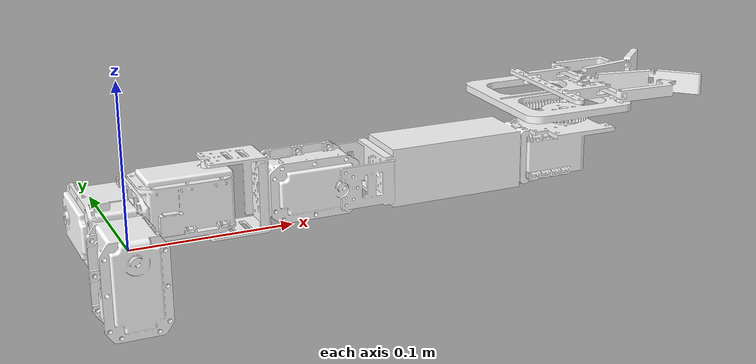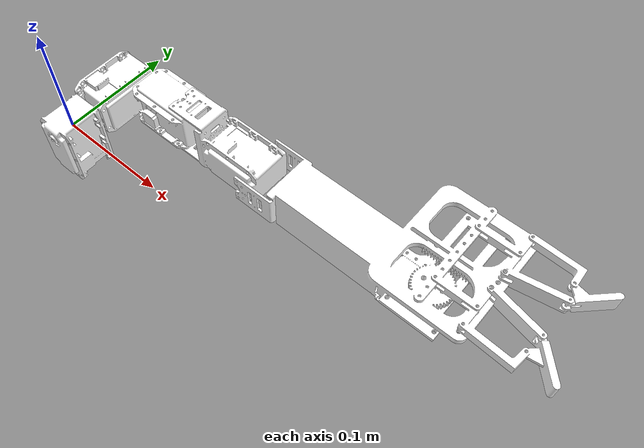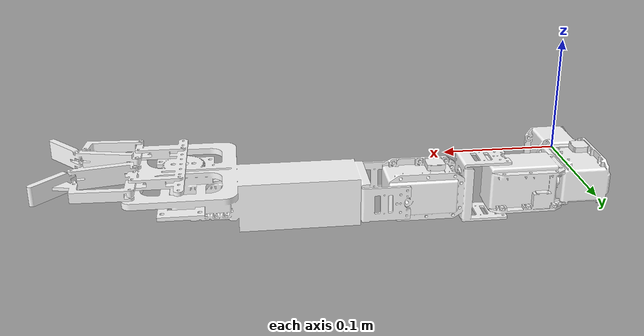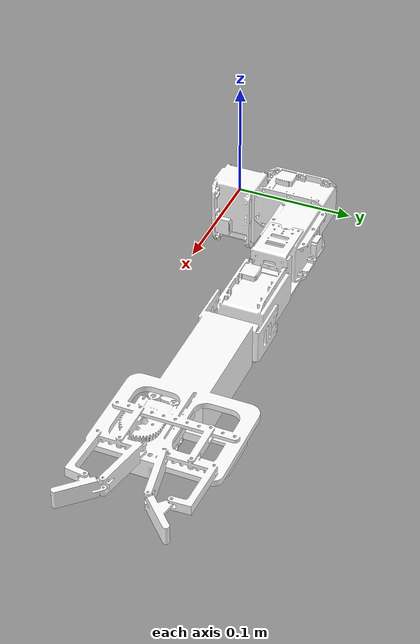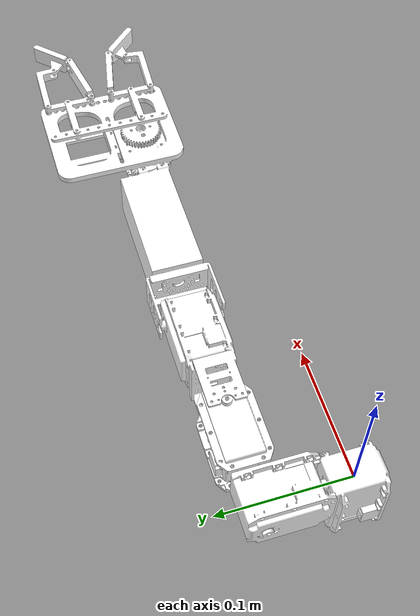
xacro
<?xml version ="1.0"?>
<robot xmlns:xacro="http://www.ros.org/wiki/xacro" name="manipulator">
<!--0.5624 height to start-->
<material name="white">
  <color rgba="1 1 1 1"/>
</material>

<xacro:property name="MXLength" value="0.0611"/>
<xacro:property name="MXWidth" value="0.0402"/>
<xacro:property name="MXDepth" value="0.041"/>

<xacro:property name="MXLengthAxisShort" value="0.013"/>
<xacro:property name="MXLengthAxisLong" value="0.0481"/>

<xacro:property name="MXCouplerThickness" value="0.0025"/>

<xacro:property name="AXLength" value="0.05"/>
<xacro:property name="AXWidth" value="0.032"/>
<xacro:property name="AXDepth" value="0.04"/>

<xacro:property name="LinkLength" value="0.096"/>
<xacro:property name="LinkWidth" value="0.04"/>
<xacro:property name="LinkHeight" value="0.04"/>

<xacro:property name="MXBracketLength" value="0.036"/>

<xacro:property name="AXBracketLength" value="0.052"/>

<xacro:property name="MXBracketCorrection" value="0.002"/>

<!-- http://gazebosim.org/tutorials?tut=inertia&cat=build_robot#Rescalingthemomentofinertiavalues -->
<xacro:property name="MXMass" value="0.165"/>

<xacro:property name="Link1Mass" value="0.185"/>

<xacro:property name="Link2Mass" value="0.2651"/>

<!-- MACROS -->

<xacro:macro name="MXInertial" params="trans rpy">
  <inertial>
    <origin xyz="${trans}" rpy="${rpy}" />
    <mass value="${MXMass}" />
    <inertia
      ixx="3.85605E-05"
      ixy="3.5409E-07"
      ixz="7.7913E-07"
      iyy="6.21555E-05"
      iyz="2.7126E-07"
      izz="5.51265E-05"/>
  </inertial>
</xacro:macro>

<xacro:macro name="MXVisual" params="trans rpy">
  <visual>
    <origin xyz="${trans}" rpy="${rpy}"/>
    <geometry>
      <mesh filename="package://arm_imitation/meshes/mx-64.stl" scale="0.001 0.001 0.001"/>
    </geometry>
    <material name="white"/>
  </visual>
</xacro:macro>

<xacro:macro name="MXCollision" params="trans rpy">
    <collision>
      <origin xyz="${trans}" rpy="${rpy}"/>
      <geometry>
        <mesh filename="package://arm_imitation/meshes/mx-64.stl" scale="0.001 0.001 0.001"/>
      </geometry>
    </collision>
</xacro:macro>

<xacro:macro name="Link1Inertial" params="trans rpy">
  <inertial>
    <origin xyz="${trans}" rpy="${rpy}"/>
    <mass value="${Link1Mass}" />
    <inertia
      ixx="4.8914E-05"
      ixy="3.46135E-07"
      ixz="-2.24405E-06"
      iyy="9.83275E-05"
      iyz="5.71095E-07"
      izz="9.4054E-05"/>
  </inertial>
</xacro:macro>

<xacro:macro name="Link1Visual" params="trans rpy">
  <visual>
    <origin xyz="${trans}" rpy="${rpy}"/>
    <geometry>
      <mesh filename="package://arm_imitation/meshes/link3.stl" scale="0.001 0.001 0.001"/>
    </geometry>
    <material name="white"/>
  </visual>
</xacro:macro>

<xacro:macro name="Link1Collision" params="trans rpy">
    <collision>
      <origin xyz="${trans}" rpy="${rpy}"/>
      <geometry>
      <mesh filename="package://arm_imitation/meshes/link3.stl" scale="0.001 0.001 0.001"/>
    </geometry>
    </collision>
</xacro:macro>

<xacro:macro name="Link2Inertial" params="trans rpy">
  <inertial>
    <origin xyz="${trans}" rpy="${rpy}"/>
    <mass value="${Link2Mass}" />
    <inertia
      ixx="0.00021581791"
      ixy="-4.474888E-05"
      ixz="-0.00015723081"
      iyy="0.0009819304"
      iyz="-3.653078E-05"
      izz="0.0010320343"/>
  </inertial>
</xacro:macro>

<xacro:macro name="Link2Visual" params="trans rpy">
  <visual>
    <origin xyz="${trans}" rpy="${rpy}"/>
    <geometry>
      <mesh filename="package://arm_imitation/meshes/link4.stl" scale="0.001 0.001 0.001"/>
    </geometry>
    <material name="white"/>
  </visual>
</xacro:macro>

<xacro:macro name="Link2Collision" params="trans rpy">
    <collision>
      <origin xyz="${trans}" rpy="${rpy}"/>
      <geometry>
      <mesh filename="package://arm_imitation/meshes/link4.stl" scale="0.001 0.001 0.001"/>
    </geometry>
    </collision>
</xacro:macro>

<xacro:macro name="RevJoint" params="id trans rpy parent child axis l u v">
    <joint name="${id}" type="revolute">
      <origin xyz="${trans}" rpy="${rpy}"/>
      <parent link="${parent}"/>
      <child link="${child}"/>
      <axis xyz="${axis}"/>
      <limit lower="${l}" upper="${u}" effort="30" velocity="${v}"/>
    </joint>
</xacro:macro>

<xacro:macro name="FxdJoint" params="id trans rpy parent child">
    <joint name="${id}" type="fixed">
      <origin xyz="${trans}"  rpy="${rpy}" />
      <parent link="${parent}"/>
      <child link="${child}"/>
    </joint>
</xacro:macro>

<!-- LINKS -->

  <link name="shoulder_pitch_motor">
    <xacro:MXInertial trans="0 0 0" rpy="0 0 0 "/>
    <xacro:MXVisual trans="0 0 0" rpy="0 0 0 "/>
    <xacro:MXCollision trans="0 0 0" rpy="0 0 0"/>
  </link>

  <link name="shoulder_roll_motor">
    <xacro:MXInertial trans="0 0 ${MXLengthAxisLong}" rpy="0 0 0 "/>
    <xacro:MXVisual trans="0 0 ${MXLengthAxisLong}" rpy="0 0 0 "/>
    <xacro:MXCollision trans="0 0 ${MXLengthAxisLong}" rpy="0 0 0"/>
  </link>

  <link name="shoulder_yaw_motor">
    <xacro:MXInertial trans="0 0 0" rpy="0 0 0"/>
    <xacro:MXVisual trans="0 0 0" rpy="0 0 0"/>
    <xacro:MXCollision trans="0 0 0" rpy="0 0 0"/>
  </link>

  <link name="link_1">
    <xacro:Link1Inertial trans="0 0 0" rpy="0 0 0"/>
    <xacro:Link1Visual trans="0 0 0" rpy="0 0 0"/>
    <xacro:Link1Collision trans="0 0 0" rpy="0 0 0"/>
  </link>

  <link name="link_2">
    <xacro:Link2Inertial trans="0 0 0" rpy="0 0 0"/>
    <xacro:Link2Visual trans="0 0 0" rpy="0 0 0"/>
    <xacro:Link2Collision trans="0 0 0" rpy="0 0 0"/>
  </link>

 <!-- JOINTS -->
 <!-- the trans parameter present here is to toggle distance of current object with respect to next adjacent object i.e. its child-->

  <xacro:RevJoint id="shoulder_pitch" trans="0 ${MXDepth/2} 0" rpy="-1.57 -1.57 0" parent="shoulder_pitch_motor" child="shoulder_roll_motor" axis="0 0 -1" l="-3.14" u="3.14" v="6.28"/>
  <xacro:RevJoint id="shoulder_roll" trans="0 ${MXLengthAxisLong + MXDepth/2} ${MXLengthAxisLong}" rpy="1.57 -1.57 3.14" parent="shoulder_roll_motor" child="shoulder_yaw_motor" axis="0 0 1" l="-3.14" u="3.14" v="6.28"/>
  <xacro:RevJoint id="shoulder_yaw" trans="0 0 0" rpy="1.57 0 1.57" parent="shoulder_yaw_motor" child="link_1" axis="1 0 0" l="-1.57" u="1.57" v="6.28"/>
  <xacro:RevJoint id="elbow_pitch" trans="0 ${MXLengthAxisLong + MXBracketLength} 0" rpy="0 1.57 0" parent="link_1" child="link_2" axis="1 0 0" l="-1.57" u="1.57" v="6.28"/>

</robot>
